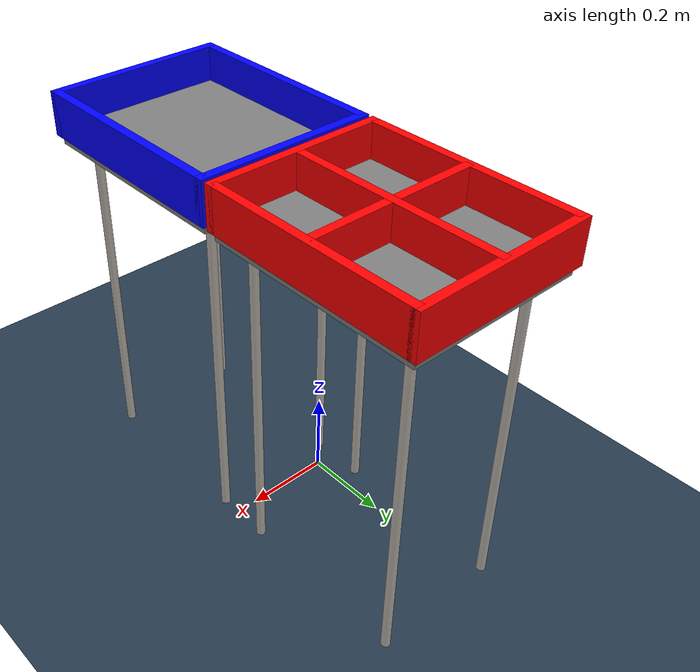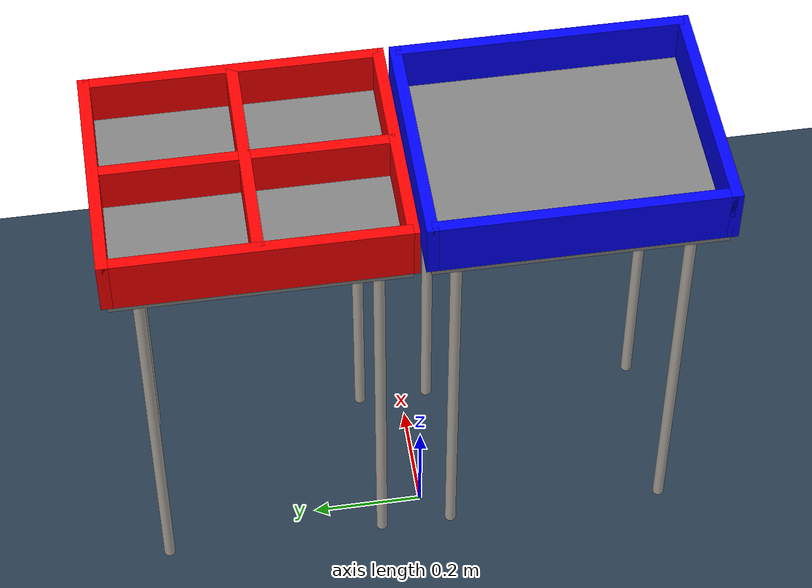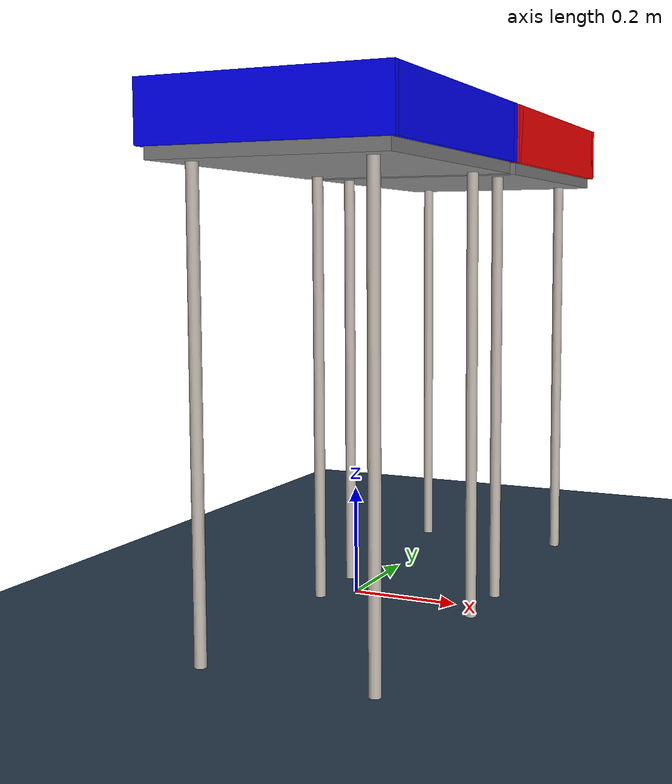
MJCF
<mujoco model="bins_arena">
  <asset>
    <texture builtin="gradient" height="256" rgb1=".9 .9 1." rgb2=".2 .3 .4" type="skybox" width="256"/>
    <texture builtin="checker" height="512" name="texplane" rgb1=".2 .3 .4" rgb2=".1 0.15 0.2" type="2d" width="512"/>
    <texture file="../textures/metal.png" type="2d" name="tex-dark-wood"/>
    <material name="floorplane" reflectance="0.5" shininess="0.0" specular="0.0" texrepeat="2 2" texture="texplane" texuniform="true"/>
    <!-- steel legs -->
    <texture file="../textures/steel-brushed.png" type="cube" name="tex-steel-brushed"/>
    <material name="table_legs_metal" reflectance="0.8" shininess="0.8" texrepeat="1 1" texture="tex-steel-brushed" />

    <!-- bins -->
    <texture file="../textures/light-wood.png" type="2d" name="tex-light-wood"/>
    <texture file="../textures/dark-wood.png" type="2d" name="tex-dark-wood"/>
    <material name="light-wood" reflectance="0" texrepeat="15 15" texture="tex-light-wood" texuniform="true"/>
    <material name="dark-wood" reflectance="0" texrepeat="5 5" texture="tex-dark-wood" texuniform="true"/>
  </asset>
  <worldbody>
    <geom condim="3" material="floorplane" name="floor" pos="0 0 0" size="3 3 .125" type="plane"/>

    <!-- bins -->
    <body name="bin1" pos="0.1 -0.25 0.8">
      <geom pos="0 0 0" size="0.2 0.25 0.02" type="box" group="0" friction="1 0.005 0.0001"/>
      <geom pos="0 0 0" material="light-wood" size="0.2 0.25 0.02" type="box" conaffinity="0" contype="0" group="1"/>
        <geom pos="0 0.25 0.05" size="0.21 0.01 0.05" type="box" group="0" friction="1 0.005 0.0001" rgba="0 0 1 1"/>
        <geom pos="0 0.25 0.05" size="0.21 0.01 0.05" type="box" conaffinity="0" contype="0" group="1" material="light-wood"/>
        <geom pos="0 -0.25 0.05" size="0.21 0.01 0.05" type="box" group="0" friction="1 0.005 0.0001" rgba="0 0 1 1"/>
        <geom pos="0 -0.25 0.05" size="0.21 0.01 0.05" type="box" conaffinity="0" contype="0" group="1" material="light-wood"/>
        <geom pos="0.2 0 0.05" size="0.01 0.25 0.05" type="box" group="0" friction="1 0.005 0.0001" rgba="0 0 1 1"/>
        <geom pos="0.2 0 0.05" size="0.01 0.25 0.05" type="box" conaffinity="0" contype="0" group="1" material="light-wood"/>
        <geom pos="-0.2 0 0.05" size="0.01 0.25 0.05" type="box" group="0" friction="1 0.005 0.0001" rgba="0 0 1 1"/>
        <geom pos="-0.2 0 0.05" size="0.01 0.25 0.05" type="box" conaffinity="0" contype="0" group="1" material="light-wood"/>
        <!-- Legs (visual only) -->
        <geom pos="0.15 0.2 -0.4" size="0.01 0.4" type="cylinder" conaffinity="0" contype="0" group="1" name="bin1_leg1_visual" material="table_legs_metal"/>
        <geom pos="-0.15 0.2 -0.4" size="0.01 0.4" type="cylinder" conaffinity="0" contype="0" group="1" name="bin1_leg2_visual" material="table_legs_metal"/>
        <geom pos="-0.15 -0.2 -0.4" size="0.01 0.4" type="cylinder" conaffinity="0" contype="0" group="1" name="bin1_leg3_visual" material="table_legs_metal"/>
        <geom pos="0.15 -0.2 -0.4" size="0.01 0.4" type="cylinder" conaffinity="0" contype="0" group="1" name="bin1_leg4_visual" material="table_legs_metal"/>
    </body>
    <body name="bin2" pos="0.1 0.28 0.8">
      <geom pos="0 0 0" size="0.2 0.25 0.02" type="box" group="0" friction="1 0.005 0.0001"/>
      <geom pos="0 0 0" size="0.2 0.25 0.02" type="box" conaffinity="0" contype="0" group="1" material="dark-wood"/>
        <geom pos="0 0.25 0.05" size="0.21 0.01 0.05" type="box" group="0" friction="1 0.005 0.0001" rgba="1 0 0 1"/>
        <geom pos="0 0.25 0.05" size="0.21 0.01 0.05" type="box" conaffinity="0" contype="0" group="1" material="dark-wood"/>
        <geom pos="0 0 0.05" size="0.2 0.01 0.05" type="box" group="0" friction="1 0.005 0.0001" rgba="1 0 0 1"/>
        <geom pos="0 0 0.05" size="0.2 0.01 0.05" type="box" conaffinity="0" contype="0" group="1" material="dark-wood"/>
        <geom pos="0 -0.25 0.05" size="0.21 0.01 0.05" type="box" group="0" friction="1 0.005 0.0001" rgba="1 0 0 1"/>
        <geom pos="0 -0.25 0.05" size="0.21 0.01 0.05" type="box" conaffinity="0" contype="0" group="1" material="dark-wood"/>
        <geom pos="0.2 0 0.05" size="0.01 0.25 0.05" type="box" group="0" friction="1 0.005 0.0001" rgba="1 0 0 1"/>
        <geom pos="0.2 0 0.05" size="0.01 0.25 0.05" type="box" conaffinity="0" contype="0" group="1" material="dark-wood"/>
        <geom pos="0 0 0.05" size="0.01 0.25 0.05" type="box" group="0" friction="1 0.005 0.0001" rgba="1 0 0 1"/>
        <geom pos="0 0 0.05" size="0.01 0.25 0.05" type="box" conaffinity="0" contype="0" group="1" material="dark-wood"/>
        <geom pos="-0.2 0 0.05" size="0.01 0.25 0.05" type="box" group="0" friction="1 0.005 0.0001" rgba="1 0 0 1"/>
        <geom pos="-0.2 0 0.05" size="0.01 0.25 0.05" type="box" conaffinity="0" contype="0" group="1" material="dark-wood"/>
        <!-- Legs (visual only) -->
        <geom pos="0.15 0.2 -0.4" size="0.01 0.4" type="cylinder" conaffinity="0" contype="0" group="1" name="bin2_leg1_visual" material="table_legs_metal"/>
        <geom pos="-0.15 0.2 -0.4" size="0.01 0.4" type="cylinder" conaffinity="0" contype="0" group="1" name="bin2_leg2_visual" material="table_legs_metal"/>
        <geom pos="-0.15 -0.2 -0.4" size="0.01 0.4" type="cylinder" conaffinity="0" contype="0" group="1" name="bin2_leg3_visual" material="table_legs_metal"/>
        <geom pos="0.15 -0.2 -0.4" size="0.01 0.4" type="cylinder" conaffinity="0" contype="0" group="1" name="bin2_leg4_visual" material="table_legs_metal"/>
    </body>

    <light diffuse=".8 .8 .8" dir="0 -.15 -1" directional="false" pos="1 1 4.0" specular="0.3 0.3 0.3" castshadow="false"/>
    <light diffuse=".8 .8 .8" dir="0 -.15 -1" directional="false" pos="-3. -3. 4.0" specular="0.3 0.3 0.3" castshadow="false"/>
    <!-- front view -->
    <camera mode="fixed" name="frontview" pos="1.6 0 1.45" quat="0.56 0.43 0.43 0.56"/>
    <!-- bird view -->
    <camera mode="fixed" name="birdview" pos="-0.2 0 3.0" quat="0.7071 0 0 0.7071"/>
    <!-- agent view -->
    <camera mode="fixed" name="agentview" pos="1.0 0 1.75" quat="0.653 0.271 0.271 0.653"/>
  </worldbody>
</mujoco>
